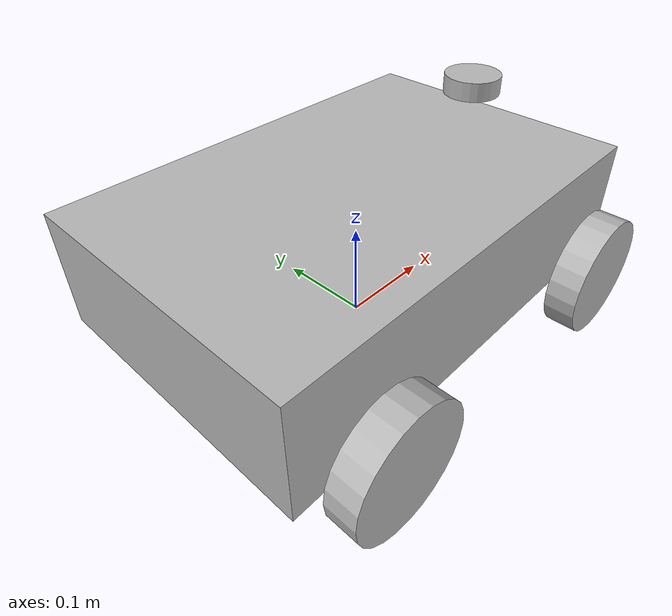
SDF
<?xml version="1.0" ?>
<sdf version="1.9">
  <model name="simple_rover">

    <!-- body -->
    <link name="base_link">
      <pose>0 0 0.10 0 0 0</pose> <!-- Lowering the base link to adjust center of mass -->

      <collision name="col">
        <geometry>
          <box><size>0.45 0.30 0.12</size></box>
        </geometry>
      </collision>

      <visual name="vis">
        <geometry>
          <box><size>0.45 0.30 0.12</size></box>
        </geometry>
      </visual>

      <inertial>
        <mass>1000.0</mass> <!-- Increased mass significantly -->
      </inertial>
    </link>

    <!-- LiDAR link -->
    <link name="lidar_link">
      <pose>0.18 0 0.20 0 0 0</pose> <!-- Positioning LiDAR 0.2m above the rover -->
      <inertial><mass>0.1</mass></inertial>

      <visual name="vis">
        <geometry>
          <cylinder><radius>0.03</radius><length>0.02</length></cylinder> <!-- Visual appearance of the LiDAR -->
        </geometry>
      </visual>

      <sensor name="lidar" type="ray"> <!-- Set the sensor type as ray -->
        <always_on>true</always_on>
        <pose>0 0 0 0 0 0</pose>
        <update_rate>10</update_rate>
        <topic>/scan</topic> <!-- ROS 2 topic for publishing LiDAR data -->
        <visualize>true</visualize>

        <ray>
          <scan>
            <horizontal>
              <samples>720</samples> <!-- Number of samples (resolution) -->
              <resolution>1</resolution>
              <min_angle>-3.14159</min_angle> <!-- Field of view start angle -->
              <max_angle>3.14159</max_angle> <!-- Field of view end angle -->
            </horizontal>
          </scan>
          <range>
            <min>0.12</min> <!-- Minimum range (0.12 meters) -->
            <max>12.0</max> <!-- Maximum range (12 meters) -->
            <resolution>0.01</resolution>
          </range>
        </ray>
      </sensor>
    </link>

    <!-- LiDAR Joint -->
    <joint name="lidar_joint" type="fixed">
      <parent>base_link</parent>
      <child>lidar_link</child>
    </joint>

    <!-- LiDAR Plugin for ROS 2 Integration -->
    <plugin name="gazebo_ros_lidar" filename="libgazebo_ros_lidar.so">
      <sensor_name>lidar</sensor_name>
      <frame_id>laser</frame_id>
      <topic>/scan</topic> <!-- ROS 2 topic for LiDAR data -->
      <visualize>true</visualize> <!-- Enable ray visualization -->
    </plugin>

    <!-- Wheel surface params -->
    <!-- wheel radius=0.06, length=0.03 -->
    <!-- IMPORTANT: cylinder axis is local Z; we rotate collision+visual by +90deg about X -->
    <!-- Wheel link poses are NOT rotated; only the geometry is rotated. -->

    <!-- Front Left Wheel -->
    <link name="front_left_wheel">
      <pose>0.15 0.18 0.06 0 0 0</pose>

      <collision name="col">
        <pose>0 0 0 1.57079632679 0 0</pose>
        <geometry>
          <cylinder><radius>0.06</radius><length>0.03</length></cylinder>
        </geometry>
        <surface>
          <friction>
            <ode><mu>0.7</mu><mu2>0.7</mu2></ode> <!-- Reduced friction -->
          </friction>
          <contact>
            <ode>
              <kp>100000</kp> <!-- Reduced stiffness -->
              <kd>50</kd>     <!-- Reduced damping -->
              <min_depth>0.001</min_depth>
              <max_vel>0.1</max_vel>
            </ode>
          </contact>
        </surface>
      </collision>

      <visual name="vis">
        <pose>0 0 0 1.57079632679 0 0</pose>
        <geometry>
          <cylinder><radius>0.06</radius><length>0.03</length></cylinder>
        </geometry>
      </visual>

      <inertial><mass>10.0</mass></inertial> <!-- Increased wheel mass -->
    </link>

    <!-- Rear Left Wheel -->
    <link name="rear_left_wheel">
      <pose>-0.15 0.18 0.06 0 0 0</pose>

      <collision name="col">
        <pose>0 0 0 1.57079632679 0 0</pose>
        <geometry>
          <cylinder><radius>0.06</radius><length>0.03</length></cylinder>
        </geometry>
        <surface>
          <friction>
            <ode><mu>0.7</mu><mu2>0.7</mu2></ode> <!-- Reduced friction -->
          </friction>
          <contact>
            <ode>
              <kp>100000</kp> <!-- Reduced stiffness -->
              <kd>50</kd>     <!-- Reduced damping -->
              <min_depth>0.001</min_depth>
              <max_vel>0.1</max_vel>
            </ode>
          </contact>
        </surface>
      </collision>

      <visual name="vis">
        <pose>0 0 0 1.57079632679 0 0</pose>
        <geometry>
          <cylinder><radius>0.06</radius><length>0.03</length></cylinder>
        </geometry>
      </visual>

      <inertial><mass>10.0</mass></inertial> <!-- Increased wheel mass -->
    </link>

    <!-- Front Right Wheel -->
    <link name="front_right_wheel">
      <pose>0.15 -0.18 0.06 0 0 0</pose>

      <collision name="col">
        <pose>0 0 0 1.57079632679 0 0</pose>
        <geometry>
          <cylinder><radius>0.06</radius><length>0.03</length></cylinder>
        </geometry>
        <surface>
          <friction>
            <ode><mu>0.7</mu><mu2>0.7</mu2></ode> <!-- Reduced friction -->
          </friction>
          <contact>
            <ode>
              <kp>100000</kp> <!-- Reduced stiffness -->
              <kd>50</kd>     <!-- Reduced damping -->
              <min_depth>0.001</min_depth>
              <max_vel>0.1</max_vel>
            </ode>
          </contact>
        </surface>
      </collision>

      <visual name="vis">
        <pose>0 0 0 1.57079632679 0 0</pose>
        <geometry>
          <cylinder><radius>0.06</radius><length>0.03</length></cylinder>
        </geometry>
      </visual>

      <inertial><mass>10.0</mass></inertial> <!-- Increased wheel mass -->
    </link>

    <!-- Rear Right Wheel -->
    <link name="rear_right_wheel">
      <pose>-0.15 -0.18 0.06 0 0 0</pose>

      <collision name="col">
        <pose>0 0 0 1.57079632679 0 0</pose>
        <geometry>
          <cylinder><radius>0.06</radius><length>0.03</length></cylinder>
        </geometry>
        <surface>
          <friction>
            <ode><mu>0.7</mu><mu2>0.7</mu2></ode> <!-- Reduced friction -->
          </friction>
          <contact>
            <ode>
              <kp>100000</kp> <!-- Reduced stiffness -->
              <kd>50</kd>     <!-- Reduced damping -->
              <min_depth>0.001</min_depth>
              <max_vel>0.1</max_vel>
            </ode>
          </contact>
        </surface>
      </collision>

      <visual name="vis">
        <pose>0 0 0 1.57079632679 0 0</pose>
        <geometry>
          <cylinder><radius>0.06</radius><length>0.03</length></cylinder>
        </geometry>
      </visual>

      <inertial><mass>10.0</mass></inertial> <!-- Increased wheel mass -->
    </link>

    <!-- wheel joints: axle is +/-Y -->
    <joint name="front_left_wheel_joint" type="revolute">
      <parent>base_link</parent>
      <child>front_left_wheel</child>
      <axis>
        <xyz>0 1 0</xyz>
        <limit>
          <effort>50</effort>
          <velocity>50</velocity>
        </limit>
      </axis>
    </joint>

    <joint name="rear_left_wheel_joint" type="revolute">
      <parent>base_link</parent>
      <child>rear_left_wheel</child>
      <axis>
        <xyz>0 1 0</xyz>
        <limit>
          <effort>50</effort>
          <velocity>50</velocity>
        </limit>
      </axis>
    </joint>

    <joint name="front_right_wheel_joint" type="revolute">
      <parent>base_link</parent>
      <child>front_right_wheel</child>
      <axis>
        <xyz>0 1 0</xyz> <!-- Corrected to use Y-axis for rotation -->
        <limit>
          <effort>50</effort>
          <velocity>50</velocity>
        </limit>
      </axis>
    </joint>

    <joint name="rear_right_wheel_joint" type="revolute">
      <parent>base_link</parent>
      <child>rear_right_wheel</child>
      <axis>
        <xyz>0 1 0</xyz> <!-- Corrected to use Y-axis for rotation -->
        <limit>
          <effort>50</effort>
          <velocity>50</velocity>
        </limit>
      </axis>
    </joint>

    <!-- 4-wheel skid-steer using DiffDrive -->
    <!-- Front axle diff drive -->
    <plugin filename="libgz-sim-diff-drive-system.so"
            name="gz::sim::systems::DiffDrive">
      <left_joint>front_left_wheel_joint</left_joint>
      <right_joint>front_right_wheel_joint</right_joint>
      <wheel_separation>0.36</wheel_separation>  <!-- Distance between front and rear wheels -->
      <wheel_radius>0.06</wheel_radius>          <!-- Radius of the wheels -->
      <topic>cmd_vel_front</topic>
    </plugin>

    <!-- Rear axle diff drive -->
    <plugin filename="libgz-sim-diff-drive-system.so"
            name="gz::sim::systems::DiffDrive">
      <left_joint>rear_left_wheel_joint</left_joint>
      <right_joint>rear_right_wheel_joint</right_joint>
      <wheel_separation>0.36</wheel_separation>  <!-- Distance between front and rear wheels -->
      <wheel_radius>0.06</wheel_radius>          <!-- Radius of the wheels -->
      <topic>cmd_vel_rear</topic>
    </plugin>

  </model>
</sdf>
